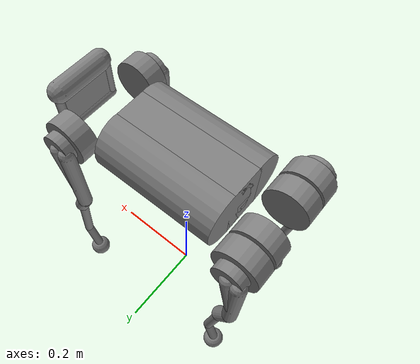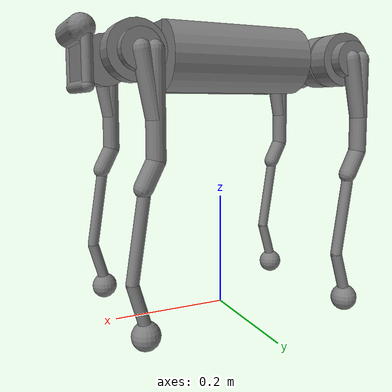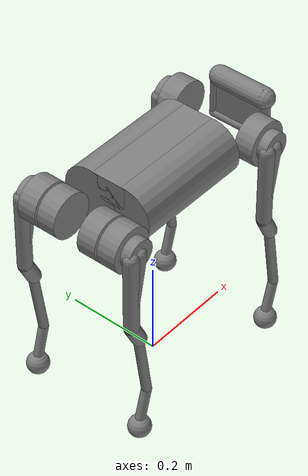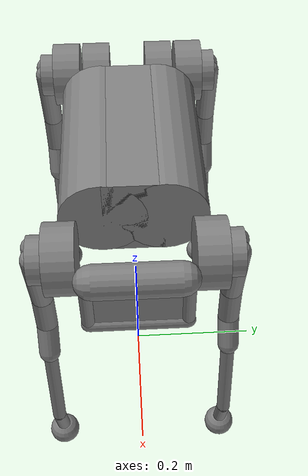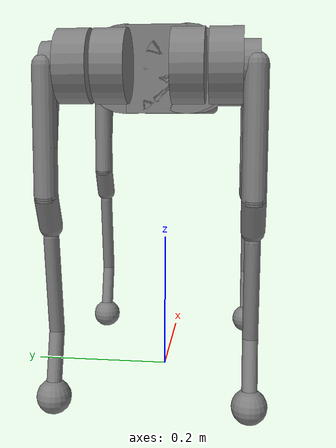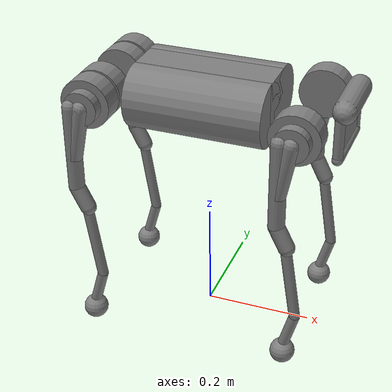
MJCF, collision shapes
<mujoco model="go1">
  <compiler angle="radian" meshdir="assets" autolimits="true"/>

  <option cone="elliptic" impratio="100"/>

  <default>
    <default class="go1">
      <geom friction="0.6" margin="0.001" condim="1"/>
      <joint axis="0 1 0" damping="2" armature="0.01" frictionloss="0.2"/>
      <position kp="100" forcerange="-23.7 23.7"/>
      <default class="abduction">
        <joint axis="1 0 0" damping="1" range="-0.863 0.863"/>
        <motor ctrlrange="-0.863 0.863"/>
      </default>
      <default class="hip">
        <joint range="-0.686 4.501"/>
        <position ctrlrange="-0.686 4.501"/>
      </default>
      <default class="knee">
        <joint range="-2.818 -0.888"/>
        <position forcerange="-35.55 35.55" ctrlrange="-2.818 -0.888"/>
      </default>

      <default class="abduction_torque">
        <joint axis="1 0 0" damping="1" range="-0.863 0.863"/>
        <motor ctrlrange="-12 12"/>
      </default>
      <default class="hip_torque">
        <joint range="-0.686 4.501"/>
        <motor ctrlrange="-12 12"/>
      </default>
      <default class="knee_torque">
        <joint range="-2.818 -0.888"/>
        <motor ctrlrange="-12 12"/>
      </default>

      <default class="visual">
        <geom type="mesh" contype="0" conaffinity="0" group="2" material="dark"/>
      </default>
      <default class="collision">
        <geom group="3" type="capsule"/>
        <default class="hip_left1">
          <geom size="0.046 0.02" pos="0 0.045 0" quat="1 1 0 0" type="cylinder"/>
        </default>
        <default class="hip_left2">
          <geom size="0.031 0.02" pos="0 0.065 0" quat="1 1 0 0" type="cylinder"/>
        </default>
        <default class="hip_left3">
          <geom size="0.046 0.02" quat="1 1 0 0" type="cylinder"/>
        </default>
        <default class="hip_right1">
          <geom size="0.046 0.02" pos="0 -0.045 0" quat="1 1 0 0" type="cylinder"/>
        </default>
        <default class="hip_right2">
          <geom size="0.031 0.02" pos="0 -0.065 0" quat="1 1 0 0" type="cylinder"/>
        </default>
        <default class="hip_right3">
          <geom size="0.046 0.02" quat="1 1 0 0" type="cylinder"/>
        </default>
        <default class="thigh1">
          <geom size="0.015" fromto="-0.02 0 0 -0.02 0 -0.16"/>
        </default>
        <default class="thigh2">
          <geom size="0.015" fromto="0 0 0 -0.02 0 -0.1"/>
        </default>
        <default class="thigh3">
          <geom size="0.015" fromto="-0.02 0 -0.16 0 0 -0.2"/>
        </default>
        <default class="calf1">
          <geom size="0.01" fromto="0 0 0 0.02 0 -0.13"/>
        </default>
        <default class="calf2">
          <geom size="0.01" fromto="0.02 0 -0.13 0 0 -0.2"/>
        </default>
        <default class="foot">
          <geom type="sphere" size="0.023" pos="0 0 -0.213" priority="1" solimp="0.015 1 0.023" condim="6"
            friction="0.8 0.02 0.01"/>
        </default>
      </default>
    </default>
  </default>

  <asset>
    <material name="dark" rgba="0.1 0.1 0.1 1"/>
    <mesh class="go1" file="trunk.stl"/>
    <mesh class="go1" file="hip.stl"/>
    <mesh class="go1" file="thigh_mirror.stl"/>
    <mesh class="go1" file="calf.stl"/>
    <mesh class="go1" file="thigh.stl"/>
  </asset>

  <worldbody>
    <light name="spotlight" mode="targetbodycom" target="trunk" pos="0 -1 2"/>
    <body name="trunk" pos="0 0 0.445" childclass="go1">
      <site name="base" pos="0 0 0" quat="1 0 0 0"/>
      <camera name="tracking" mode="trackcom" pos="0 -1 0.8" xyaxes="1 0 0 0 1 1"/>
      <site name="head" pos="0.3 0 0" rgba="1 0 0 1" size="0.02" group="5"/>
      <inertial pos="0.0223 0.002 -0.0005" mass="5.204"
        fullinertia="0.0168352186 0.0656071082 0.0742720659 0.0004636141 0.0002367952 3.6671e-05"/>
      <freejoint/>
      <geom class="visual" mesh="trunk"/>
      <geom class="collision" size="0.125 0.04 0.057" type="box"/>
      <geom class="collision" quat="1 0 1 0" pos="0 -0.04 0" size="0.058 0.125" type="cylinder"/>
      <geom class="collision" quat="1 0 1 0" pos="0 +0.04 0" size="0.058 0.125" type="cylinder"/>
      <geom class="collision" pos="0.25 0 0" size="0.005 0.06 0.05" type="box"/>
      <geom class="collision" pos="0.25 0.06 -0.01" size="0.009 0.035"/>
      <geom class="collision" pos="0.25 -0.06 -0.01" size="0.009 0.035"/>
      <geom class="collision" pos="0.25 0 -0.05" size="0.01 0.06" quat="1 1 0 0"/>
      <geom class="collision" pos="0.255 0 0.0355" size="0.021 0.052" quat="1 1 0 0"/>
      <site name="imu" pos="0 0 0"/>
      <body name="FL_hip" pos="0.1881 0.04675 0">
        <inertial pos="-0.0049166 -0.00762615 -8.865e-05" mass="0.68"
          fullinertia="0.000374268192 0.000635923669 0.000457647394 0.000036844422 -0.000000986754 -0.000001172894"/>
        <joint class="abduction_torque" name="FL_hip_joint"/>
        <geom class="visual" mesh="hip"/>
        <geom class="hip_left1"/>
        <geom class="hip_left2"/>
        <body name="FL_thigh" pos="0 0.08 0">
          <inertial pos="-0.00304722 -0.019315 -0.0305004" mass="1.009"
            fullinertia="0.005851561134 0.005596155105 0.00107157026 0.000001783284 0.000328291374 0.000021430713"/>
          <joint class="hip_torque" name="FL_thigh_joint"/>
          <geom class="visual" mesh="thigh"/>
          <geom class="thigh1"/>
          <geom class="thigh2"/>
          <geom class="thigh3"/>
          <body name="FL_calf" pos="0 0 -0.213">
            <inertial pos="0.00429862 0.000976676 -0.146197" mass="0.195862"
              fullinertia="0.000374268192 0.000635923669 0.000457647394 3.6844422e-05 -9.86754e-07 -1.172894e-06"/>
            <joint class="knee_torque" name="FL_calf_joint"/>
            <geom class="visual" mesh="calf"/>
            <geom class="calf1"/>
            <geom class="calf2"/>
            <geom name="FL" class="foot"/>
            <site name="FL" pos="0 0 -0.213" type="sphere" size="0.023" group="5"/>
          </body>
        </body>
      </body>
      <body name="RL_hip" pos="-0.1881 0.04675 0">
        <inertial pos="0.0049166 -0.00762615 -8.865e-05" mass="0.68"
          fullinertia="0.000374268192 0.000635923669 0.000457647394 0.000036844422 -0.000000986754 -0.000001172894"/>
        <joint class="abduction_torque" name="RL_hip_joint"/>
        <geom class="visual" quat="0 0 1 0" mesh="hip"/>
        <geom class="hip_left1"/>
        <geom class="hip_left2"/>
        <geom class="hip_left3"/>
        <body name="RL_thigh" pos="0 0.08 0">
          <inertial pos="-0.00304722 -0.019315 -0.0305004" mass="1.009"
            fullinertia="0.005851561134 0.005596155105 0.00107157026 0.000001783284 0.000328291374 0.000021430713"/>
          <joint class="hip_torque" name="RL_thigh_joint"/>
          <geom class="visual" mesh="thigh"/>
          <geom class="thigh1"/>
          <geom class="thigh2"/>
          <geom class="thigh3"/>
          <body name="RL_calf" pos="0 0 -0.213">
            <inertial pos="0.00429862 0.000976676 -0.146197"
              mass="0.195862" fullinertia="0.002939186297 0.00295576935 0.000030273372 0.000001440899 -0.000105359550 -0.000024397752"/>
            <joint class="knee_torque" name="RL_calf_joint"/>
            <geom class="visual" mesh="calf"/>
            <geom class="calf1"/>
            <geom class="calf2"/>
            <geom name="RL" class="foot"/>
            <site name="RL" pos="0 0 -0.213" type="sphere" size="0.023" group="5"/>
          </body>
        </body>
      </body>
      <body name="FR_hip" pos="0.1881 -0.04675 0">
        <inertial pos="-0.0049166 0.00762615 -8.865e-05" mass="0.68"
          fullinertia="0.000374268192 0.000635923669 0.000457647394 0.000036844422 -0.000000986754 -0.000001172894"/>
        <joint class="abduction_torque" name="FR_hip_joint"/>
        <geom class="visual" mesh="hip" quat="1 0 0 0"/>
        <geom class="hip_right1"/>
        <geom class="hip_right2"/>
        <body name="FR_thigh" pos="0 -0.08 0">
          <inertial pos="-0.00304722 0.019315 -0.0305004" mass="1.009"
            fullinertia="0.005851561134 0.005596155105 0.00107157026 0.000001783284 0.000328291374 0.000021430713"/>
          <joint class="hip_torque" name="FR_thigh_joint"/>
          <geom class="visual" mesh="thigh_mirror"/>
          <geom class="thigh1"/>
          <geom class="thigh2"/>
          <geom class="thigh3"/>
          <body name="FR_calf" pos="0 0 -0.213">
            <inertial pos="0.00429862 0.000976676 -0.146197"
              mass="0.195862" fullinertia="0.002939186297 0.00295576935 0.000030273372 0.000001440899 -0.000105359550 -0.000024397752"/>
            <joint class="knee_torque" name="FR_calf_joint"/>
            <geom class="visual" mesh="calf"/>
            <geom class="calf1"/>
            <geom class="calf2"/>
            <geom name="FR" class="foot"/>
            <site name="FR" pos="0 0 -0.213" type="sphere" size="0.023" group="5"/>
          </body>
        </body>
      </body>
      <body name="RR_hip" pos="-0.1881 -0.04675 0">
        <inertial pos="0.0049166 0.00762615 -8.865e-05" mass="0.68"
          fullinertia="0.000374268192 0.000635923669 0.000457647394 0.000036844422 -0.000000986754 -0.000001172894"/>
        <joint class="abduction_torque" name="RR_hip_joint"/>
        <geom class="visual" quat="0 0 0 -1" mesh="hip"/>
        <geom class="hip_right1"/>
        <geom class="hip_right2"/>
        <geom class="hip_right3"/>
        <body name="RR_thigh" pos="0 -0.08 0">
          <inertial pos="-0.00304722 0.019315 -0.0305004" mass="1.009"
            fullinertia="0.005851561134 0.005596155105 0.00107157026 0.000001783284 0.000328291374 0.000021430713"/>
          <joint class="hip_torque" name="RR_thigh_joint"/>
          <geom class="visual" mesh="thigh_mirror"/>
          <geom class="thigh1"/>
          <geom class="thigh2"/>
          <geom class="thigh3"/>
          <body name="RR_calf" pos="0 0 -0.213">
            <inertial pos="0.00429862 0.000976676 -0.146197"
              mass="0.195862" fullinertia="0.002939186297 0.00295576935 0.000030273372 0.000001440899 -0.000105359550 -0.000024397752"/>
            <joint class="knee_torque" name="RR_calf_joint"/>
            <geom class="visual" mesh="calf"/>
            <geom class="calf1"/>
            <geom class="calf2"/>
            <geom name="RR" class="foot"/>
            <site name="RR" pos="0 0 -0.213" type="sphere" size="0.023" group="5"/>
          </body>
        </body>
      </body>
    </body>
  </worldbody>

  <!-- On-Board Sensors -->
  <sensor>

    <!-- Body frame IMU -->
    <accelerometer name="imu_accel" site="base"/>
    <gyro name="imu_gyro" site="base"/>
    <framequat name="imu_quat_frame" objtype="site" objname="base"/>
    <framelinvel name="imu_lin_frame" objtype="site" objname="base"/>

    <!-- Contact Sensors -->
    <touch name="FL_contact_sensor" site="FL"/>
    <touch name="BL_contact_sensor" site="RL"/>
    <touch name="FR_contact_sensor" site="FR"/>
    <touch name="BR_contact_sensor" site="RR"/>
  </sensor>

  <!-- Actuation -> Torque control -->
  <actuator>
    <motor class="abduction_torque" name="FL_hip" joint="FL_hip_joint"/>
    <motor class="hip_torque" name="FL_thigh" joint="FL_thigh_joint"/>
    <motor class="knee_torque" name="FL_calf" joint="FL_calf_joint"/>
    <motor class="abduction_torque" name="RL_hip" joint="RL_hip_joint"/>
    <motor class="hip_torque" name="RL_thigh" joint="RL_thigh_joint"/>
    <motor class="knee_torque" name="RL_calf" joint="RL_calf_joint"/>
    <motor class="abduction_torque" name="FR_hip" joint="FR_hip_joint"/>
    <motor class="hip_torque" name="FR_thigh" joint="FR_thigh_joint"/>
    <motor class="knee_torque" name="FR_calf" joint="FR_calf_joint"/>
    <motor class="abduction_torque" name="RR_hip" joint="RR_hip_joint"/>
    <motor class="hip_torque" name="RR_thigh" joint="RR_thigh_joint"/>
    <motor class="knee_torque" name="RR_calf" joint="RR_calf_joint"/>
  </actuator>

  <keyframe>
    <key name="home" qpos="0 0 0.27 1 0 0 0 0 0.9 -1.8 0 0.9 -1.8 0 0.9 -1.8 0 0.9 -1.8"
      ctrl="0 0.9 -1.8 0 0.9 -1.8 0 0.9 -1.8 0 0.9 -1.8"/>
  </keyframe>

</mujoco>
